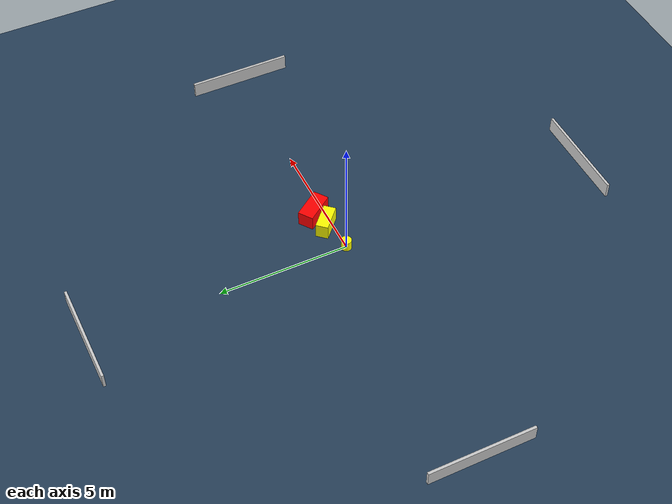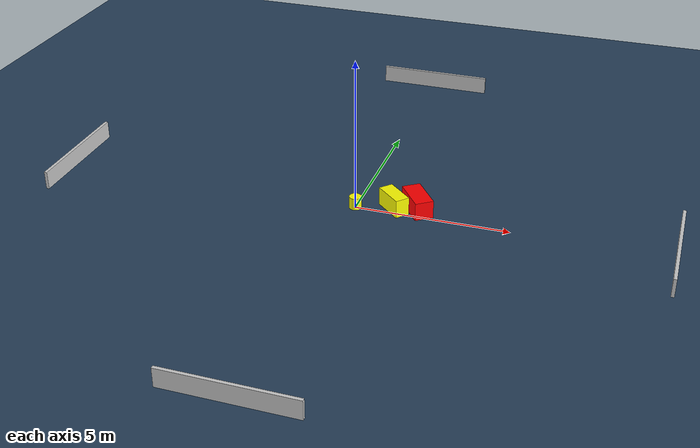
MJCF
<?xml version="1.0" ?>
<mujoco model="generated_environment">
  <option timestep="0.01" integrator="RK4" cone="elliptic"/>
  <default>
    <geom density="1"/>
  </default>
  <asset>
    <texture builtin="gradient" height="3072" name="skybox" rgb1="0.3 0.5 0.7" rgb2="0 0 0" type="skybox" width="512"/>
    <texture builtin="checker" height="300" name="groundplane" rgb1="0.2 0.3 0.4" rgb2="0.1 0.2 0.3" type="2d" width="300"/>
    <material name="groundplane" reflectance="0.2" texrepeat="5 5" texture="groundplane"/>
  </asset>
  <worldbody>
    <light dir="0 0 -1" directional="true" pos="0 0 1.5"/>
    <geom condim="3" friction="0.5 0.005 0.001" material="groundplane" name="floor" pos="0 0 0" size="0 0 0.05" type="plane"/>
    <body name="walls">
      <geom name="wall_1" condim="4" pos="-10.0 0.0 0.3" rgba="0.800000011920929 0.800000011920929 0.800000011920929 1.0" size="0.05 2.0 0.3" type="box"/>
      <geom name="wall_2" condim="4" pos="10.0 0.0 0.3" rgba="0.800000011920929 0.800000011920929 0.800000011920929 1.0" size="0.05 2.0 0.3" type="box"/>
      <geom name="wall_3" condim="4" pos="0.0 -10.0 0.3" rgba="0.800000011920929 0.800000011920929 0.800000011920929 1.0" size="2.0 0.05 0.3" type="box"/>
      <geom name="wall_4" condim="4" pos="0.0 10.0 0.3" rgba="0.800000011920929 0.800000011920929 0.800000011920929 1.0" size="2.0 0.05 0.3" type="box"/>
    </body>
    <body name="robot">
      <joint name="joint_x" type="slide" pos="0 0 0" axis="1 0 0"/>
      <joint name="joint_y" type="slide" pos="0 0 0" axis="0 1 0"/>
      <geom name="robot" type="cylinder" pos="0.0 0.0 0.2" size="0.2 0.2 0.0" mass="5.0" friction="1.0 0.005 0.0001" condim="4" rgba="1.0 1.0 0.0 1.0"/>
    </body>
    <body name="obstacle_1_movable">
      <geom name="obstacle_1_movable" condim="4" pos="1.1993765700567598 0.262658672989055 0.3" euler="0 0 317.8697514605011" friction="0.0 0.005 0.001" rgba="1.0 1.0 0.0 1.0" size="0.5141345777144937 0.23557353609446036 0.3" type="box" mass="0.1"/>
      <joint type="free"/>
    </body>
    <body name="obstacle_2_static">
      <geom name="obstacle_2_static" condim="4" pos="1.9243518706228964 0.43525421842206385 0.3" euler="0 0 306.01061230948096" friction="0.0 0.005 0.001" rgba="1.0 0.0 0.0 1.0" size="0.6057767814207293 0.30250931522638835 0.3" type="box"/>
    </body>
  </worldbody>
  <actuator>
    <motor name="actuator_x" joint="joint_x" gear="1" ctrlrange="-1 1"/>
    <motor name="actuator_y" joint="joint_y" gear="1" ctrlrange="-1 1"/>
  </actuator>
</mujoco>
